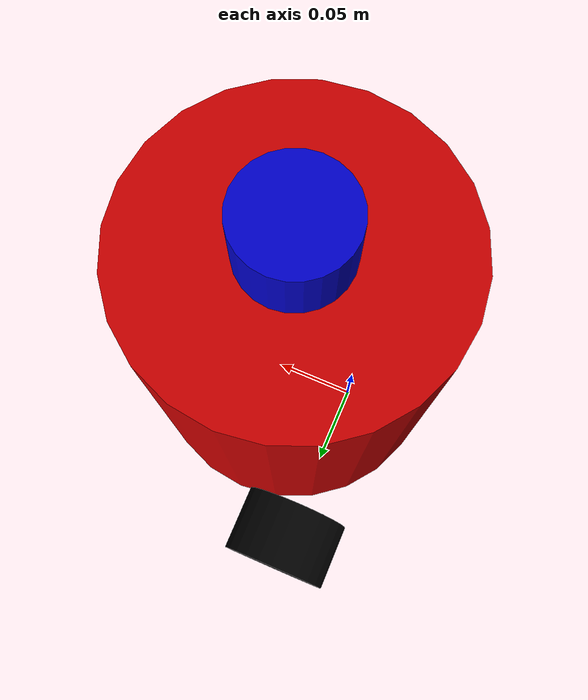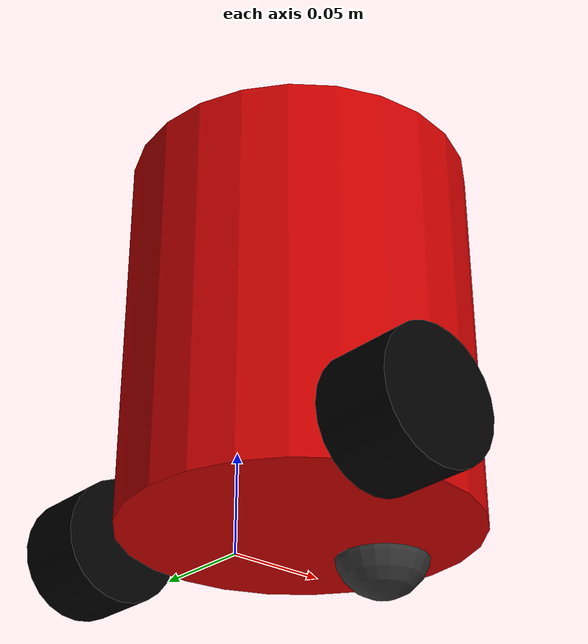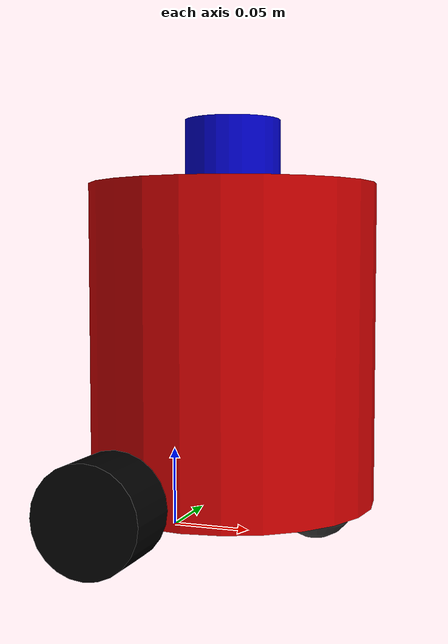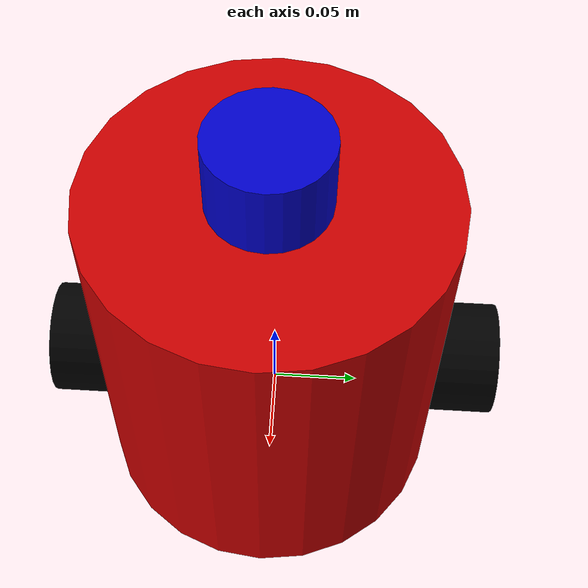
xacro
<?xml version="1.0"?>
<robot name="arebot" xmlns:xacro="http://www.ros.org/wiki/xacro">

  <material name="red">
    <color rgba="0.8 0.0 0.0 1.0"/>
  </material>
  <material name="black">
    <color rgba="0.0 0.0 0.0 1.0"/>
  </material>
  <material name="grey">
    <color rgba="0.2 0.2 0.2 1.0"/>
  </material>
  <material name="blue">
    <color rgba="0.0 0.0 0.8 1.0"/>
  </material>

  <xacro:macro name="cylinder_inertia" params="m r h">
    <inertial>
      <origin xyz="0 0 0" rpy="0 0 0" />
      <mass value="${m}" />
      <inertia ixx="${(m/12) * (3*r*r + h*h)}" ixy="0" ixz="0"
               iyy="${(m/12) * (3*r*r + h*h)}" iyz="0"
               izz="${(m/2) * (r*r)}" />
    </inertial>
  </xacro:macro>

  <xacro:macro name="sphere_inertia" params="m r">
    <inertial>
      <origin xyz="0 0 0" rpy="0 0 0" />
      <mass value="${m}" />
      <inertia ixx="${(2/5) * m * r * r}" ixy="0" ixz="0"
               iyy="${(2/5) * m * r * r}" iyz="0"
               izz="${(2/5) * m * r * r}" />
    </inertial>
  </xacro:macro>

  <link name="base_footprint">
    <inertial>
      <mass value="1e-5" />
      <origin xyz="0 0 0" rpy="0 0 0" />
      <inertia ixx="1e-6" ixy="0.0" ixz="0.0" iyy="1e-6" iyz="0.0" izz="1e-6" />
    </inertial>
  </link>

  <link name="base_link" />

  <!-- base_footprint sits on the wheel axle (the point diff_drive_controller odometry tracks);
       base_link stays at the chassis center, 0.04 m ahead of the axle -->
  <joint name="base_footprint_joint" type="fixed">
    <origin xyz="0.04 0 0" rpy="0 0 0" />
    <parent link="base_footprint" />
    <child link="base_link" />
  </joint>

  <link name="chassis">
    <visual>
      <origin xyz="0 0 0" rpy="0 0 0" />
      <geometry>
        <cylinder radius="0.09" length="0.20"/>
      </geometry>
      <material name="red"/>
    </visual>
    <collision>
      <origin xyz="0 0 0" rpy="0 0 0" />
      <geometry>
        <cylinder radius="0.09" length="0.20"/>
      </geometry>
    </collision>
    <xacro:cylinder_inertia m="2.0" r="0.09" h="0.20"/>
  </link>

  <joint name="chassis_joint" type="fixed">
    <origin xyz="0 0 0.12" rpy="0 0 0" />
    <parent link="base_link" />
    <child link="chassis" />
  </joint>

  <link name="left_wheel">
    <visual>
      <origin xyz="0 0 0" rpy="1.5708 0 0" />
      <geometry>
        <cylinder radius="0.0325" length="0.04"/>
      </geometry>
      <material name="black"/>
    </visual>
    <collision>
      <origin xyz="0 0 0" rpy="1.5708 0 0" />
      <geometry>
        <cylinder radius="0.0325" length="0.04"/>
      </geometry>
    </collision>
    <xacro:cylinder_inertia m="0.2" r="0.0325" h="0.04"/>
  </link>

  <joint name="left_wheel_joint" type="continuous">
    <origin xyz="-0.04 0.11 0.0325" rpy="0 0 0" />
    <parent link="base_link" />
    <child link="left_wheel" />
    <axis xyz="0 1 0" />
  </joint>

  <link name="right_wheel">
    <visual>
      <origin xyz="0 0 0" rpy="1.5708 0 0" />
      <geometry>
        <cylinder radius="0.0325" length="0.04"/>
      </geometry>
      <material name="black"/>
    </visual>
    <collision>
      <origin xyz="0 0 0" rpy="1.5708 0 0" />
      <geometry>
        <cylinder radius="0.0325" length="0.04"/>
      </geometry>
    </collision>
    <xacro:cylinder_inertia m="0.2" r="0.0325" h="0.04"/>
  </link>

  <joint name="right_wheel_joint" type="continuous">
    <origin xyz="-0.04 -0.11 0.0325" rpy="0 0 0" />
    <parent link="base_link" />
    <child link="right_wheel" />
    <axis xyz="0 1 0" />
  </joint>

  <joint name="imu_joint" type="fixed">
  <parent link="base_link"/>
  <child link="imu_link"/>
  <origin xyz="0.0 0.0 0.25" rpy="0 0 0"/>
</joint>

<link name="imu_link">
  <visual>
    <geometry>
      <box size="0.01 0.01 0.01"/>
    </geometry>
    <material name="black">
      <color rgba="0 0 0 1"/>
    </material>
  </visual>
  <inertial>
    <mass value="0.01"/>
    <inertia ixx="0.0001" ixy="0" ixz="0" iyy="0.0001" iyz="0" izz="0.0001"/>
  </inertial>
</link>

  <link name="caster">
    <visual>
      <origin xyz="0 0 0" rpy="0 0 0" />
      <geometry>
        <sphere radius="0.025"/>
      </geometry>
      <material name="grey"/>
    </visual>
    <collision>
      <origin xyz="0 0 0" rpy="0 0 0" />
      <geometry>
        <sphere radius="0.025"/>
      </geometry>
    </collision>
    <xacro:sphere_inertia m="0.1" r="0.025"/>
  </link>

  <joint name="caster_joint" type="fixed">
    <origin xyz="0.055 0 0.025" rpy="0 0 0" />
    <parent link="base_link" />
    <child link="caster" />
  </joint>

  <link name="laser">
    <visual>
      <origin xyz="0 0 0" rpy="0 0 0" />
      <geometry>
        <cylinder radius="0.03" length="0.04"/>
      </geometry>
      <material name="blue"/>
    </visual>
    <collision>
      <origin xyz="0 0 0" rpy="0 0 0" />
      <geometry>
        <cylinder radius="0.03" length="0.04"/>
      </geometry>
    </collision>
    <xacro:cylinder_inertia m="0.1" r="0.03" h="0.04"/>
  </link>

<joint name="laser_joint" type="fixed">
    <origin xyz="0 0 0.24" rpy="0 0 0" />
    <parent link="base_link" />
    <child link="laser" />
  </joint>

  <xacro:include filename="$(find AREbot_description)/urdf/arebot.gazebo" />

</robot>
